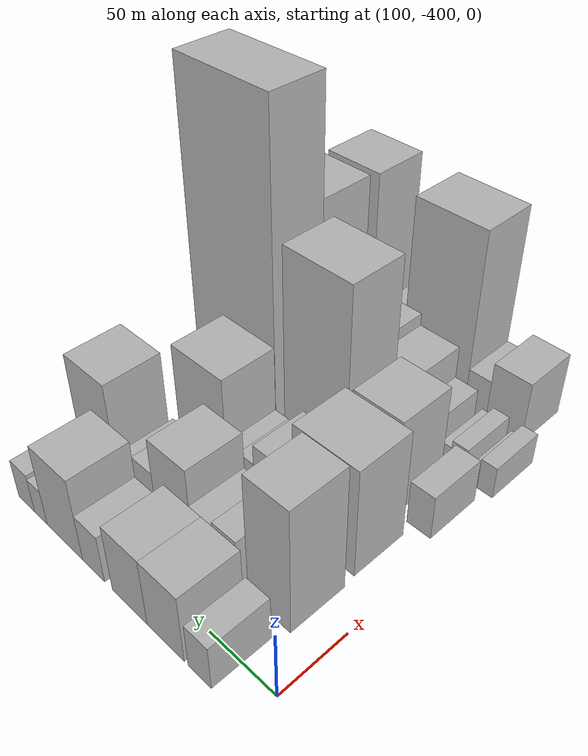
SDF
<sdf version="1.6">
 <world name="default">
  <model name="building_15">
   <static>1</static>
   <pose>100.0000 -365.7893 0 0.000000 0.000000 0.000000</pose>
   <link name="link">
    <pose>0 0 16.50 0 0 0</pose>
    <collision name="collision"><geometry><box><size>40.0000 17.7125 33.0000</size></box></geometry></collision>
    <visual name="visual">
     <cast_shadows>0</cast_shadows>
     <geometry><box><size>40.0000 17.7125 33.0000</size></box></geometry>
     <material>
      <script>
       <uri>model://HANNAS_wall/materials/scripts</uri>
       <uri>model://HANNAS_wall/materials/textures</uri>
       <name>vrc/HANNAS_wall</name>
      </script>
     </material>
    </visual>
   </link>
  </model>
  <model name="building_16">
   <static>1</static>
   <pose>100.0000 -338.9634 0 0.000000 0.000000 0.000000</pose>
   <link name="link">
    <pose>0 0 25.50 0 0 0</pose>
    <collision name="collision"><geometry><box><size>40.0000 29.9394 51.0000</size></box></geometry></collision>
    <visual name="visual">
     <cast_shadows>0</cast_shadows>
     <geometry><box><size>40.0000 29.9394 51.0000</size></box></geometry>
     <material>
      <script>
       <uri>model://HANNAS_wall/materials/scripts</uri>
       <uri>model://HANNAS_wall/materials/textures</uri>
       <name>vrc/HANNAS_wall</name>
      </script>
     </material>
    </visual>
   </link>
  </model>
  <model name="building_17">
   <static>1</static>
   <pose>100.0000 -308.8992 0 0.000000 0.000000 0.000000</pose>
   <link name="link">
    <pose>0 0 25.50 0 0 0</pose>
    <collision name="collision"><geometry><box><size>40.0000 30.1890 51.0000</size></box></geometry></collision>
    <visual name="visual">
     <cast_shadows>0</cast_shadows>
     <geometry><box><size>40.0000 30.1890 51.0000</size></box></geometry>
     <material>
      <script>
       <uri>model://HANNAS_wall/materials/scripts</uri>
       <uri>model://HANNAS_wall/materials/textures</uri>
       <name>vrc/HANNAS_wall</name>
      </script>
     </material>
    </visual>
   </link>
  </model>
  <model name="building_18">
   <static>1</static>
   <pose>100.0000 -276.6746 0 0.000000 0.000000 0.000000</pose>
   <link name="link">
    <pose>0 0 18.00 0 0 0</pose>
    <collision name="collision"><geometry><box><size>40.0000 20.2602 36.0000</size></box></geometry></collision>
    <visual name="visual">
     <cast_shadows>0</cast_shadows>
     <geometry><box><size>40.0000 20.2602 36.0000</size></box></geometry>
     <material>
      <script>
       <uri>model://HANNAS_wall/materials/scripts</uri>
       <uri>model://HANNAS_wall/materials/textures</uri>
       <name>vrc/HANNAS_wall</name>
      </script>
     </material>
    </visual>
   </link>
  </model>
  <model name="building_19">
   <static>1</static>
   <pose>100.0000 -249.0902 0 0.000000 0.000000 0.000000</pose>
   <link name="link">
    <pose>0 0 31.50 0 0 0</pose>
    <collision name="collision"><geometry><box><size>40.0000 34.9087 63.0000</size></box></geometry></collision>
    <visual name="visual">
     <cast_shadows>0</cast_shadows>
     <geometry><box><size>40.0000 34.9087 63.0000</size></box></geometry>
     <material>
      <script>
       <uri>model://HANNAS_wall/materials/scripts</uri>
       <uri>model://HANNAS_wall/materials/textures</uri>
       <name>vrc/HANNAS_wall</name>
      </script>
     </material>
    </visual>
   </link>
  </model>
  <model name="building_20">
   <static>1</static>
   <pose>100.0000 -225.1248 0 0.000000 0.000000 0.000000</pose>
   <link name="link">
    <pose>0 0 13.50 0 0 0</pose>
    <collision name="collision"><geometry><box><size>40.0000 13.0221 27.0000</size></box></geometry></collision>
    <visual name="visual">
     <cast_shadows>0</cast_shadows>
     <geometry><box><size>40.0000 13.0221 27.0000</size></box></geometry>
     <material>
      <script>
       <uri>model://HANNAS_wall/materials/scripts</uri>
       <uri>model://HANNAS_wall/materials/textures</uri>
       <name>vrc/HANNAS_wall</name>
      </script>
     </material>
    </visual>
   </link>
  </model>
  <model name="building_21">
   <static>1</static>
   <pose>100.0000 -210.2478 0 0.000000 0.000000 0.000000</pose>
   <link name="link">
    <pose>0 0 15.00 0 0 0</pose>
    <collision name="collision"><geometry><box><size>40.0000 16.7318 30.0000</size></box></geometry></collision>
    <visual name="visual">
     <cast_shadows>0</cast_shadows>
     <geometry><box><size>40.0000 16.7318 30.0000</size></box></geometry>
     <material>
      <script>
       <uri>model://HANNAS_wall/materials/scripts</uri>
       <uri>model://HANNAS_wall/materials/textures</uri>
       <name>vrc/HANNAS_wall</name>
      </script>
     </material>
    </visual>
   </link>
  </model>
  <model name="building_62">
   <static>1</static>
   <pose>149.0000 -363.1869 0 0.000000 0.000000 0.000000</pose>
   <link name="link">
    <pose>0 0 46.50 0 0 0</pose>
    <collision name="collision"><geometry><box><size>40.0000 32.1077 93.0000</size></box></geometry></collision>
    <visual name="visual">
     <cast_shadows>0</cast_shadows>
     <geometry><box><size>40.0000 32.1077 93.0000</size></box></geometry>
     <material>
      <script>
       <uri>model://HANNAS_wall/materials/scripts</uri>
       <uri>model://HANNAS_wall/materials/textures</uri>
       <name>vrc/HANNAS_wall</name>
      </script>
     </material>
    </visual>
   </link>
  </model>
  <model name="building_63">
   <static>1</static>
   <pose>149.0000 -329.6222 0 0.000000 0.000000 0.000000</pose>
   <link name="link">
    <pose>0 0 18.00 0 0 0</pose>
    <collision name="collision"><geometry><box><size>40.0000 19.0217 36.0000</size></box></geometry></collision>
    <visual name="visual">
     <cast_shadows>0</cast_shadows>
     <geometry><box><size>40.0000 19.0217 36.0000</size></box></geometry>
     <material>
      <script>
       <uri>model://HANNAS_wall/materials/scripts</uri>
       <uri>model://HANNAS_wall/materials/textures</uri>
       <name>vrc/HANNAS_wall</name>
      </script>
     </material>
    </visual>
   </link>
  </model>
  <model name="building_64">
   <static>1</static>
   <pose>149.0000 -310.6363 0 0.000000 0.000000 0.000000</pose>
   <link name="link">
    <pose>0 0 16.50 0 0 0</pose>
    <collision name="collision"><geometry><box><size>40.0000 18.9501 33.0000</size></box></geometry></collision>
    <visual name="visual">
     <cast_shadows>0</cast_shadows>
     <geometry><box><size>40.0000 18.9501 33.0000</size></box></geometry>
     <material>
      <script>
       <uri>model://HANNAS_wall/materials/scripts</uri>
       <uri>model://HANNAS_wall/materials/textures</uri>
       <name>vrc/HANNAS_wall</name>
      </script>
     </material>
    </visual>
   </link>
  </model>
  <model name="building_65">
   <static>1</static>
   <pose>149.0000 -284.9238 0 0.000000 0.000000 0.000000</pose>
   <link name="link">
    <pose>0 0 30.00 0 0 0</pose>
    <collision name="collision"><geometry><box><size>40.0000 32.4750 60.0000</size></box></geometry></collision>
    <visual name="visual">
     <cast_shadows>0</cast_shadows>
     <geometry><box><size>40.0000 32.4750 60.0000</size></box></geometry>
     <material>
      <script>
       <uri>model://HANNAS_wall/materials/scripts</uri>
       <uri>model://HANNAS_wall/materials/textures</uri>
       <name>vrc/HANNAS_wall</name>
      </script>
     </material>
    </visual>
   </link>
  </model>
  <model name="building_66">
   <static>1</static>
   <pose>149.0000 -259.5298 0 0.000000 0.000000 0.000000</pose>
   <link name="link">
    <pose>0 0 16.50 0 0 0</pose>
    <collision name="collision"><geometry><box><size>40.0000 18.3131 33.0000</size></box></geometry></collision>
    <visual name="visual">
     <cast_shadows>0</cast_shadows>
     <geometry><box><size>40.0000 18.3131 33.0000</size></box></geometry>
     <material>
      <script>
       <uri>model://HANNAS_wall/materials/scripts</uri>
       <uri>model://HANNAS_wall/materials/textures</uri>
       <name>vrc/HANNAS_wall</name>
      </script>
     </material>
    </visual>
   </link>
  </model>
  <model name="building_67">
   <static>1</static>
   <pose>149.0000 -243.7359 0 0.000000 0.000000 0.000000</pose>
   <link name="link">
    <pose>0 0 13.50 0 0 0</pose>
    <collision name="collision"><geometry><box><size>40.0000 13.2746 27.0000</size></box></geometry></collision>
    <visual name="visual">
     <cast_shadows>0</cast_shadows>
     <geometry><box><size>40.0000 13.2746 27.0000</size></box></geometry>
     <material>
      <script>
       <uri>model://HANNAS_wall/materials/scripts</uri>
       <uri>model://HANNAS_wall/materials/textures</uri>
       <name>vrc/HANNAS_wall</name>
      </script>
     </material>
    </visual>
   </link>
  </model>
  <model name="building_68">
   <static>1</static>
   <pose>149.0000 -213.2330 0 0.000000 0.000000 0.000000</pose>
   <link name="link">
    <pose>0 0 37.50 0 0 0</pose>
    <collision name="collision"><geometry><box><size>40.0000 37.7311 75.0000</size></box></geometry></collision>
    <visual name="visual">
     <cast_shadows>0</cast_shadows>
     <geometry><box><size>40.0000 37.7311 75.0000</size></box></geometry>
     <material>
      <script>
       <uri>model://HANNAS_wall/materials/scripts</uri>
       <uri>model://HANNAS_wall/materials/textures</uri>
       <name>vrc/HANNAS_wall</name>
      </script>
     </material>
    </visual>
   </link>
  </model>
  <model name="building_113">
   <static>1</static>
   <pose>198.0000 -354.2277 0 0.000000 0.000000 0.000000</pose>
   <link name="link">
    <pose>0 0 40.50 0 0 0</pose>
    <collision name="collision"><geometry><box><size>40.0000 47.3804 81.0000</size></box></geometry></collision>
    <visual name="visual">
     <cast_shadows>0</cast_shadows>
     <geometry><box><size>40.0000 47.3804 81.0000</size></box></geometry>
     <material>
      <script>
       <uri>model://HANNAS_wall/materials/scripts</uri>
       <uri>model://HANNAS_wall/materials/textures</uri>
       <name>vrc/HANNAS_wall</name>
      </script>
     </material>
    </visual>
   </link>
  </model>
  <model name="building_114">
   <static>1</static>
   <pose>198.0000 -310.0028 0 0.000000 0.000000 0.000000</pose>
   <link name="link">
    <pose>0 0 21.00 0 0 0</pose>
    <collision name="collision"><geometry><box><size>40.0000 23.0694 42.0000</size></box></geometry></collision>
    <visual name="visual">
     <cast_shadows>0</cast_shadows>
     <geometry><box><size>40.0000 23.0694 42.0000</size></box></geometry>
     <material>
      <script>
       <uri>model://HANNAS_wall/materials/scripts</uri>
       <uri>model://HANNAS_wall/materials/textures</uri>
       <name>vrc/HANNAS_wall</name>
      </script>
     </material>
    </visual>
   </link>
  </model>
  <model name="building_115">
   <static>1</static>
   <pose>198.0000 -292.0962 0 0.000000 0.000000 0.000000</pose>
   <link name="link">
    <pose>0 0 13.50 0 0 0</pose>
    <collision name="collision"><geometry><box><size>40.0000 12.7439 27.0000</size></box></geometry></collision>
    <visual name="visual">
     <cast_shadows>0</cast_shadows>
     <geometry><box><size>40.0000 12.7439 27.0000</size></box></geometry>
     <material>
      <script>
       <uri>model://HANNAS_wall/materials/scripts</uri>
       <uri>model://HANNAS_wall/materials/textures</uri>
       <name>vrc/HANNAS_wall</name>
      </script>
     </material>
    </visual>
   </link>
  </model>
  <model name="building_116">
   <static>1</static>
   <pose>198.0000 -280.1377 0 0.000000 0.000000 0.000000</pose>
   <link name="link">
    <pose>0 0 13.50 0 0 0</pose>
    <collision name="collision"><geometry><box><size>40.0000 11.1730 27.0000</size></box></geometry></collision>
    <visual name="visual">
     <cast_shadows>0</cast_shadows>
     <geometry><box><size>40.0000 11.1730 27.0000</size></box></geometry>
     <material>
      <script>
       <uri>model://HANNAS_wall/materials/scripts</uri>
       <uri>model://HANNAS_wall/materials/textures</uri>
       <name>vrc/HANNAS_wall</name>
      </script>
     </material>
    </visual>
   </link>
  </model>
  <model name="building_117">
   <static>1</static>
   <pose>198.0000 -252.4284 0 0.000000 0.000000 0.000000</pose>
   <link name="link">
    <pose>0 0 37.50 0 0 0</pose>
    <collision name="collision"><geometry><box><size>40.0000 44.2457 75.0000</size></box></geometry></collision>
    <visual name="visual">
     <cast_shadows>0</cast_shadows>
     <geometry><box><size>40.0000 44.2457 75.0000</size></box></geometry>
     <material>
      <script>
       <uri>model://HANNAS_wall/materials/scripts</uri>
       <uri>model://HANNAS_wall/materials/textures</uri>
       <name>vrc/HANNAS_wall</name>
      </script>
     </material>
    </visual>
   </link>
  </model>
  <model name="building_160">
   <static>1</static>
   <pose>247.0000 -381.7322 0 0.000000 0.000000 0.000000</pose>
   <link name="link">
    <pose>0 0 16.50 0 0 0</pose>
    <collision name="collision"><geometry><box><size>40.0000 17.4340 33.0000</size></box></geometry></collision>
    <visual name="visual">
     <cast_shadows>0</cast_shadows>
     <geometry><box><size>40.0000 17.4340 33.0000</size></box></geometry>
     <material>
      <script>
       <uri>model://HANNAS_wall/materials/scripts</uri>
       <uri>model://HANNAS_wall/materials/textures</uri>
       <name>vrc/HANNAS_wall</name>
      </script>
     </material>
    </visual>
   </link>
  </model>
  <model name="building_161">
   <static>1</static>
   <pose>247.0000 -346.5649 0 0.000000 0.000000 0.000000</pose>
   <link name="link">
    <pose>0 0 36.00 0 0 0</pose>
    <collision name="collision"><geometry><box><size>40.0000 36.9006 72.0000</size></box></geometry></collision>
    <visual name="visual">
     <cast_shadows>0</cast_shadows>
     <geometry><box><size>40.0000 36.9006 72.0000</size></box></geometry>
     <material>
      <script>
       <uri>model://HANNAS_wall/materials/scripts</uri>
       <uri>model://HANNAS_wall/materials/textures</uri>
       <name>vrc/HANNAS_wall</name>
      </script>
     </material>
    </visual>
   </link>
  </model>
  <model name="building_162">
   <static>1</static>
   <pose>247.0000 -299.0316 0 0.000000 0.000000 0.000000</pose>
   <link name="link">
    <pose>0 0 70.50 0 0 0</pose>
    <collision name="collision"><geometry><box><size>40.0000 52.1660 141.0000</size></box></geometry></collision>
    <visual name="visual">
     <cast_shadows>0</cast_shadows>
     <geometry><box><size>40.0000 52.1660 141.0000</size></box></geometry>
     <material>
      <script>
       <uri>model://HANNAS_wall/materials/scripts</uri>
       <uri>model://HANNAS_wall/materials/textures</uri>
       <name>vrc/HANNAS_wall</name>
      </script>
     </material>
    </visual>
   </link>
  </model>
  <model name="building_163">
   <static>1</static>
   <pose>247.0000 -227.7428 0 0.000000 0.000000 0.000000</pose>
   <link name="link">
    <pose>0 0 112.50 0 0 0</pose>
    <collision name="collision"><geometry><box><size>40.0000 74.4118 225.0000</size></box></geometry></collision>
    <visual name="visual">
     <cast_shadows>0</cast_shadows>
     <geometry><box><size>40.0000 74.4118 225.0000</size></box></geometry>
     <material>
      <script>
       <uri>model://HANNAS_wall/materials/scripts</uri>
       <uri>model://HANNAS_wall/materials/textures</uri>
       <name>vrc/HANNAS_wall</name>
      </script>
     </material>
    </visual>
   </link>
  </model>
  <model name="building_206">
   <static>1</static>
   <pose>296.0000 -390.9785 0 0.000000 0.000000 0.000000</pose>
   <link name="link">
    <pose>0 0 12.00 0 0 0</pose>
    <collision name="collision"><geometry><box><size>40.0000 11.1629 24.0000</size></box></geometry></collision>
    <visual name="visual">
     <cast_shadows>0</cast_shadows>
     <geometry><box><size>40.0000 11.1629 24.0000</size></box></geometry>
     <material>
      <script>
       <uri>model://HANNAS_wall/materials/scripts</uri>
       <uri>model://HANNAS_wall/materials/textures</uri>
       <name>vrc/HANNAS_wall</name>
      </script>
     </material>
    </visual>
   </link>
  </model>
  <model name="building_207">
   <static>1</static>
   <pose>296.0000 -382.2662 0 0.000000 0.000000 0.000000</pose>
   <link name="link">
    <pose>0 0 7.50 0 0 0</pose>
    <collision name="collision"><geometry><box><size>40.0000 6.2617 15.0000</size></box></geometry></collision>
    <visual name="visual">
     <cast_shadows>0</cast_shadows>
     <geometry><box><size>40.0000 6.2617 15.0000</size></box></geometry>
     <material>
      <script>
       <uri>model://HANNAS_wall/materials/scripts</uri>
       <uri>model://HANNAS_wall/materials/textures</uri>
       <name>vrc/HANNAS_wall</name>
      </script>
     </material>
    </visual>
   </link>
  </model>
  <model name="building_208">
   <static>1</static>
   <pose>296.0000 -370.2805 0 0.000000 0.000000 0.000000</pose>
   <link name="link">
    <pose>0 0 12.00 0 0 0</pose>
    <collision name="collision"><geometry><box><size>40.0000 11.7098 24.0000</size></box></geometry></collision>
    <visual name="visual">
     <cast_shadows>0</cast_shadows>
     <geometry><box><size>40.0000 11.7098 24.0000</size></box></geometry>
     <material>
      <script>
       <uri>model://HANNAS_wall/materials/scripts</uri>
       <uri>model://HANNAS_wall/materials/textures</uri>
       <name>vrc/HANNAS_wall</name>
      </script>
     </material>
    </visual>
   </link>
  </model>
  <model name="building_209">
   <static>1</static>
   <pose>296.0000 -360.5375 0 0.000000 0.000000 0.000000</pose>
   <link name="link">
    <pose>0 0 9.00 0 0 0</pose>
    <collision name="collision"><geometry><box><size>40.0000 7.7762 18.0000</size></box></geometry></collision>
    <visual name="visual">
     <cast_shadows>0</cast_shadows>
     <geometry><box><size>40.0000 7.7762 18.0000</size></box></geometry>
     <material>
      <script>
       <uri>model://HANNAS_wall/materials/scripts</uri>
       <uri>model://HANNAS_wall/materials/textures</uri>
       <name>vrc/HANNAS_wall</name>
      </script>
     </material>
    </visual>
   </link>
  </model>
  <model name="building_210">
   <static>1</static>
   <pose>296.0000 -342.8736 0 0.000000 0.000000 0.000000</pose>
   <link name="link">
    <pose>0 0 15.00 0 0 0</pose>
    <collision name="collision"><geometry><box><size>40.0000 17.5516 30.0000</size></box></geometry></collision>
    <visual name="visual">
     <cast_shadows>0</cast_shadows>
     <geometry><box><size>40.0000 17.5516 30.0000</size></box></geometry>
     <material>
      <script>
       <uri>model://HANNAS_wall/materials/scripts</uri>
       <uri>model://HANNAS_wall/materials/textures</uri>
       <name>vrc/HANNAS_wall</name>
      </script>
     </material>
    </visual>
   </link>
  </model>
  <model name="building_211">
   <static>1</static>
   <pose>296.0000 -318.7526 0 0.000000 0.000000 0.000000</pose>
   <link name="link">
    <pose>0 0 27.00 0 0 0</pose>
    <collision name="collision"><geometry><box><size>40.0000 30.6904 54.0000</size></box></geometry></collision>
    <visual name="visual">
     <cast_shadows>0</cast_shadows>
     <geometry><box><size>40.0000 30.6904 54.0000</size></box></geometry>
     <material>
      <script>
       <uri>model://HANNAS_wall/materials/scripts</uri>
       <uri>model://HANNAS_wall/materials/textures</uri>
       <name>vrc/HANNAS_wall</name>
      </script>
     </material>
    </visual>
   </link>
  </model>
  <model name="building_212">
   <static>1</static>
   <pose>296.0000 -285.6466 0 0.000000 0.000000 0.000000</pose>
   <link name="link">
    <pose>0 0 31.50 0 0 0</pose>
    <collision name="collision"><geometry><box><size>40.0000 35.5216 63.0000</size></box></geometry></collision>
    <visual name="visual">
     <cast_shadows>0</cast_shadows>
     <geometry><box><size>40.0000 35.5216 63.0000</size></box></geometry>
     <material>
      <script>
       <uri>model://HANNAS_wall/materials/scripts</uri>
       <uri>model://HANNAS_wall/materials/textures</uri>
       <name>vrc/HANNAS_wall</name>
      </script>
     </material>
    </visual>
   </link>
  </model>
  <model name="building_213">
   <static>1</static>
   <pose>296.0000 -261.9346 0 0.000000 0.000000 0.000000</pose>
   <link name="link">
    <pose>0 0 13.50 0 0 0</pose>
    <collision name="collision"><geometry><box><size>40.0000 11.9025 27.0000</size></box></geometry></collision>
    <visual name="visual">
     <cast_shadows>0</cast_shadows>
     <geometry><box><size>40.0000 11.9025 27.0000</size></box></geometry>
     <material>
      <script>
       <uri>model://HANNAS_wall/materials/scripts</uri>
       <uri>model://HANNAS_wall/materials/textures</uri>
       <name>vrc/HANNAS_wall</name>
      </script>
     </material>
    </visual>
   </link>
  </model>
  <model name="building_214">
   <static>1</static>
   <pose>296.0000 -234.1979 0 0.000000 0.000000 0.000000</pose>
   <link name="link">
    <pose>0 0 70.50 0 0 0</pose>
    <collision name="collision"><geometry><box><size>40.0000 43.5709 141.0000</size></box></geometry></collision>
    <visual name="visual">
     <cast_shadows>0</cast_shadows>
     <geometry><box><size>40.0000 43.5709 141.0000</size></box></geometry>
     <material>
      <script>
       <uri>model://HANNAS_wall/materials/scripts</uri>
       <uri>model://HANNAS_wall/materials/textures</uri>
       <name>vrc/HANNAS_wall</name>
      </script>
     </material>
    </visual>
   </link>
  </model>
  <model name="building_257">
   <static>1</static>
   <pose>345.0000 -368.3572 0 0.000000 0.000000 0.000000</pose>
   <link name="link">
    <pose>0 0 24.00 0 0 0</pose>
    <collision name="collision"><geometry><box><size>40.0000 27.3240 48.0000</size></box></geometry></collision>
    <visual name="visual">
     <cast_shadows>0</cast_shadows>
     <geometry><box><size>40.0000 27.3240 48.0000</size></box></geometry>
     <material>
      <script>
       <uri>model://HANNAS_wall/materials/scripts</uri>
       <uri>model://HANNAS_wall/materials/textures</uri>
       <name>vrc/HANNAS_wall</name>
      </script>
     </material>
    </visual>
   </link>
  </model>
  <model name="building_258">
   <static>1</static>
   <pose>345.0000 -346.1915 0 0.000000 0.000000 0.000000</pose>
   <link name="link">
    <pose>0 0 16.50 0 0 0</pose>
    <collision name="collision"><geometry><box><size>40.0000 17.0072 33.0000</size></box></geometry></collision>
    <visual name="visual">
     <cast_shadows>0</cast_shadows>
     <geometry><box><size>40.0000 17.0072 33.0000</size></box></geometry>
     <material>
      <script>
       <uri>model://HANNAS_wall/materials/scripts</uri>
       <uri>model://HANNAS_wall/materials/textures</uri>
       <name>vrc/HANNAS_wall</name>
      </script>
     </material>
    </visual>
   </link>
  </model>
  <model name="building_259">
   <static>1</static>
   <pose>345.0000 -311.0479 0 0.000000 0.000000 0.000000</pose>
   <link name="link">
    <pose>0 0 67.50 0 0 0</pose>
    <collision name="collision"><geometry><box><size>40.0000 53.2801 135.0000</size></box></geometry></collision>
    <visual name="visual">
     <cast_shadows>0</cast_shadows>
     <geometry><box><size>40.0000 53.2801 135.0000</size></box></geometry>
     <material>
      <script>
       <uri>model://HANNAS_wall/materials/scripts</uri>
       <uri>model://HANNAS_wall/materials/textures</uri>
       <name>vrc/HANNAS_wall</name>
      </script>
     </material>
    </visual>
   </link>
  </model>
  <model name="building_260">
   <static>1</static>
   <pose>345.0000 -264.9807 0 0.000000 0.000000 0.000000</pose>
   <link name="link">
    <pose>0 0 18.00 0 0 0</pose>
    <collision name="collision"><geometry><box><size>40.0000 18.8543 36.0000</size></box></geometry></collision>
    <visual name="visual">
     <cast_shadows>0</cast_shadows>
     <geometry><box><size>40.0000 18.8543 36.0000</size></box></geometry>
     <material>
      <script>
       <uri>model://HANNAS_wall/materials/scripts</uri>
       <uri>model://HANNAS_wall/materials/textures</uri>
       <name>vrc/HANNAS_wall</name>
      </script>
     </material>
    </visual>
   </link>
  </model>
  <model name="building_261">
   <static>1</static>
   <pose>345.0000 -234.0075 0 0.000000 0.000000 0.000000</pose>
   <link name="link">
    <pose>0 0 69.00 0 0 0</pose>
    <collision name="collision"><geometry><box><size>40.0000 43.0921 138.0000</size></box></geometry></collision>
    <visual name="visual">
     <cast_shadows>0</cast_shadows>
     <geometry><box><size>40.0000 43.0921 138.0000</size></box></geometry>
     <material>
      <script>
       <uri>model://HANNAS_wall/materials/scripts</uri>
       <uri>model://HANNAS_wall/materials/textures</uri>
       <name>vrc/HANNAS_wall</name>
      </script>
     </material>
    </visual>
   </link>
  </model>
 </world>
</sdf>
